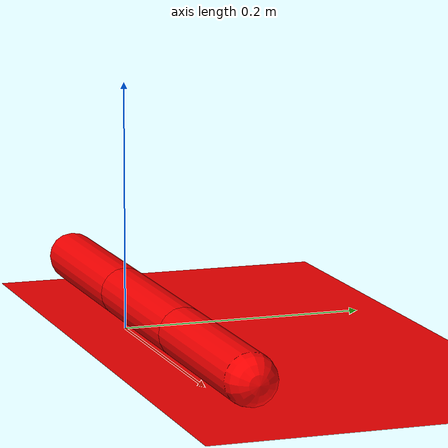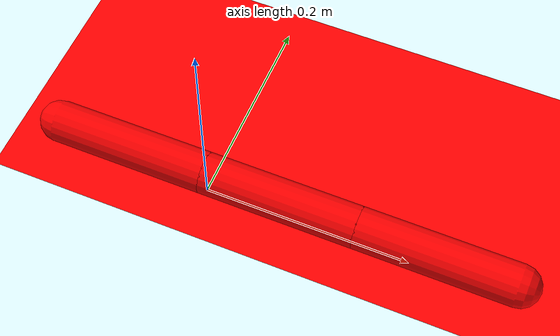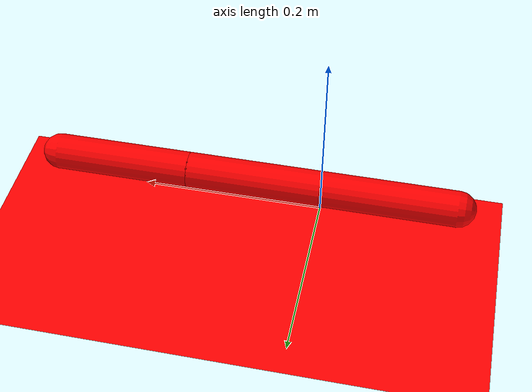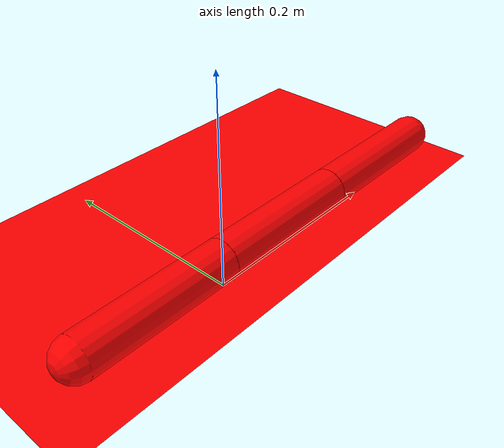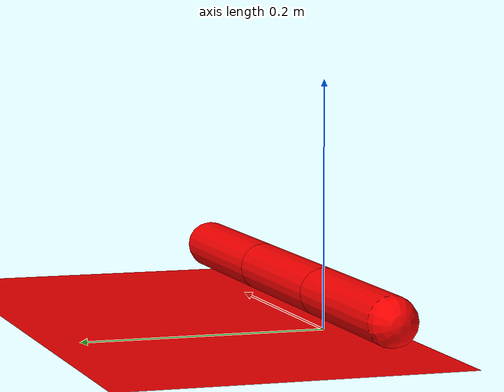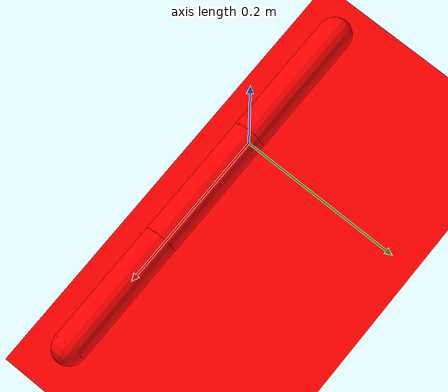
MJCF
<mujoco model="swimmer_tiny">
  <compiler angle="degree"/>
  <option timestep="0.03"/>
  <size njmax="3000" nconmax="1000"/>
  <default>
    <geom condim="3" density="5.0" friction="0.75 0.01 0.01"  margin="0.01" rgba="1 0 0 1" contype="0" conaffinity="0"/>
    <joint armature='0.1'  />
    <site size="0.1" type="sphere" rgba="0 0 1 0"/>
  </default>
  <worldbody>
    <geom name="floor" size="5 5 0.1" conaffinity="1" type="plane" condim="3"/>

    <body name="robot" pos="0 0 0.03">
      <site name="robot"/>
      <site name="point1" pos="0.3 0 0"/>
      <site name="point2" pos="0.15 0 0"/>
      <camera name="vision" pos=".125 0 .2" xyaxes="0 -1 0 .4 0 1" fovy="100"/>
      <geom name="link_1" density="1000" fromto="0.3 0 0 0.15 0 0" size="0.02" type="capsule" contype="1"/>
      <joint axis="1 0 0" name="robot_x" pos="0 0 0" type="slide"/>
      <joint axis="0 1 0" name="robot_y" pos="0 0 0" type="slide"/>
      <joint axis="0 0 1" name="robot_z" pos="0 0 0" type="hinge"/>
      <body name="mid" pos="0.15 0 0">
        <site name="point3" pos="-0.15 0 0"/>
        <geom name="link_2" density="1000" fromto="0 0 0 -0.15 0 0" size="0.02" type="capsule" contype="1"/>
        <joint axis="0 0 1" limited="true" name="motor1_rot" pos="0 0 0" range="-100 100" type="hinge" />
        <body name="back" pos="-0.15 0 0">
          <site name="point4" pos="-0.15 0 0"/>
          <geom name="link_3" density="1000" fromto="0 0 0 -0.15 0 0" size="0.02" type="capsule" contype="1"/>
          <joint axis="0 0 1" limited="true" name="motor2_rot" pos="0 0 0" range="-100 100" type="hinge"/>
        </body>
      </body>
    </body>
  </worldbody>
  <sensor>
        <touch site="point1" name="touch_point1"/>
        <touch site="point2" name="touch_point2"/>
        <touch site="point3" name="touch_point3"/>
        <touch site="point4" name="touch_point4"/>

        <jointpos joint="motor1_rot" name="jointpos_motor1_rot"/>
        <jointpos joint="motor2_rot" name="jointpos_motor2_rot"/>

        <jointvel joint="motor1_rot" name="jointvel_motor1_rot"/>
        <jointvel joint="motor2_rot" name="jointvel_motor2_rot"/>

        <!-- Used for observation -->
        <accelerometer site="robot" name="accelerometer"/>
        <velocimeter site="robot" name="velocimeter"/>
        <gyro site="robot" name="gyro"/>
        <magnetometer site="robot" name="magnetometer"/>

        <!-- Used for intrinsic constraints -->
        <subtreecom body="robot" name="subtreecom"/>
        <subtreelinvel body="robot" name="subtreelinvel"/>
        <subtreeangmom body="robot" name="subtreeangmom"/>
  </sensor>
  <actuator>
    <motor ctrllimited="true" ctrlrange="-1 1" gear="20.0" joint="motor1_rot"/>
    <motor ctrllimited="true" ctrlrange="-1 1" gear="20.0" joint="motor2_rot"/>
  </actuator>
</mujoco>
